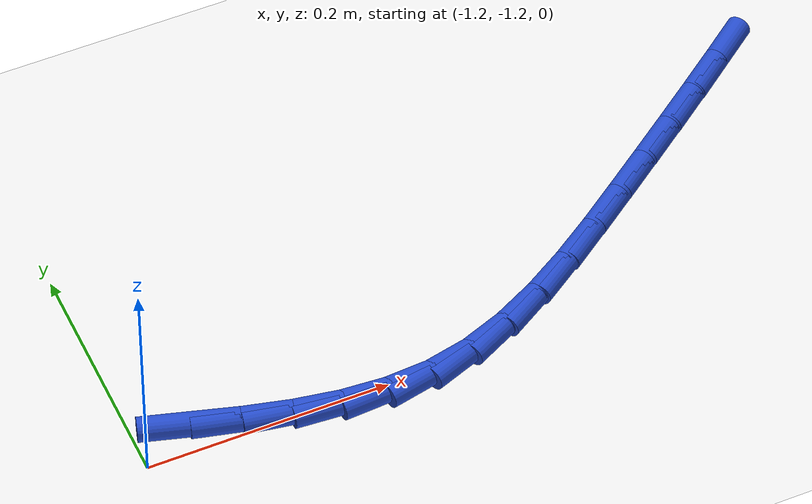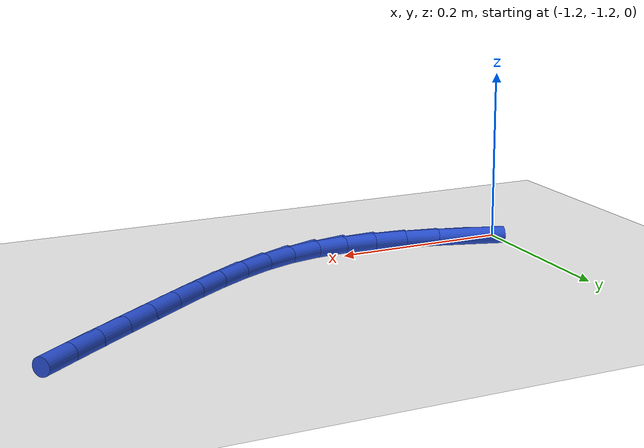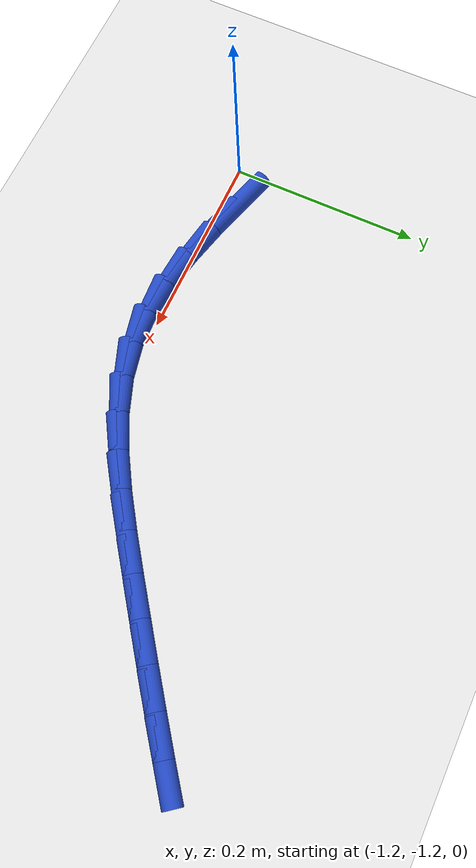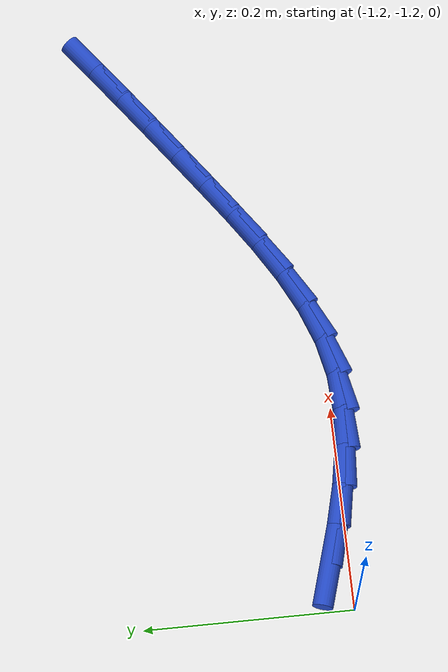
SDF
<sdf version="1.6">
 <world name="default">
  <model name="ground_plane">
   <static>1</static>
   <link name="link">
    <collision name="collision">
     <geometry><plane><normal>0 0 1</normal><size>100 100</size></plane></geometry>
     <surface><friction><ode><mu>100</mu><mu2>50</mu2></ode></friction></surface>
    </collision>
    <visual name="visual">
     <cast_shadows>0</cast_shadows>
     <geometry><plane><normal>0 0 1</normal><size>100 100</size></plane></geometry>
     <material>
      <script><uri>file://media/materials/scripts/gazebo.material</uri><name>Gazebo/WhiteGlow</name></script>
     </material>
    </visual>
   </link>
  </model>
  <model name="line">
   <link name="link_134">
    <pose>-1.1580067389421413 -1.1810202871348194 0.01 0 1.57 -0.2887144396331915</pose>
    <collision name="collision">
     <geometry><cylinder><radius>0.01</radius><length>0.08</length></cylinder></geometry>
    </collision>
    <visual name="visual">
     <material>
      <script><name>Gazebo/Blue</name><uri>file://media/materials/scripts/gazebo.material</uri></script>
     </material>
     <geometry><cylinder><radius>0.01</radius><length>0.08</length></cylinder></geometry>
    </visual>
   </link>
   <link name="link_135">
    <pose>-1.1190459250001203 -1.1925921663891108 0.01 0 1.57 -0.24387757959883888</pose>
    <collision name="collision">
     <geometry><cylinder><radius>0.01</radius><length>0.08</length></cylinder></geometry>
    </collision>
    <visual name="visual">
     <material>
      <script><name>Gazebo/Blue</name><uri>file://media/materials/scripts/gazebo.material</uri></script>
     </material>
     <geometry><cylinder><radius>0.01</radius><length>0.08</length></cylinder></geometry>
    </visual>
   </link>
   <link name="link_136">
    <pose>-1.0805947970140026 -1.2021599767242166 0.01 0 1.57 -0.1729770002072563</pose>
    <collision name="collision">
     <geometry><cylinder><radius>0.01</radius><length>0.08</length></cylinder></geometry>
    </collision>
    <visual name="visual">
     <material>
      <script><name>Gazebo/Blue</name><uri>file://media/materials/scripts/gazebo.material</uri></script>
     </material>
     <geometry><cylinder><radius>0.01</radius><length>0.08</length></cylinder></geometry>
    </visual>
   </link>
   <link name="link_137">
    <pose>-1.042662233130909 -1.208787672592321 0.01 0 1.57 -0.07342815125462407</pose>
    <collision name="collision">
     <geometry><cylinder><radius>0.01</radius><length>0.08</length></cylinder></geometry>
    </collision>
    <visual name="visual">
     <material>
      <script><name>Gazebo/Blue</name><uri>file://media/materials/scripts/gazebo.material</uri></script>
     </material>
     <geometry><cylinder><radius>0.01</radius><length>0.08</length></cylinder></geometry>
    </visual>
   </link>
   <link name="link_138">
    <pose>-1.0052571114979614 -1.211539208445607 0.01 0 1.57 0.05583387227103884</pose>
    <collision name="collision">
     <geometry><cylinder><radius>0.01</radius><length>0.08</length></cylinder></geometry>
    </collision>
    <visual name="visual">
     <material>
      <script><name>Gazebo/Blue</name><uri>file://media/materials/scripts/gazebo.material</uri></script>
     </material>
     <geometry><cylinder><radius>0.01</radius><length>0.08</length></cylinder></geometry>
    </visual>
   </link>
   <link name="link_139">
    <pose>-0.9683883102622799 -1.209478538736258 0.01 0 1.57 0.2099279921125532</pose>
    <collision name="collision">
     <geometry><cylinder><radius>0.01</radius><length>0.08</length></cylinder></geometry>
    </collision>
    <visual name="visual">
     <material>
      <script><name>Gazebo/Blue</name><uri>file://media/materials/scripts/gazebo.material</uri></script>
     </material>
     <geometry><cylinder><radius>0.01</radius><length>0.08</length></cylinder></geometry>
    </visual>
   </link>
   <link name="link_140">
    <pose>-0.9320630433524567 -1.2017388170487442 0.01 0 1.57 0.3533651986936958</pose>
    <collision name="collision">
     <geometry><cylinder><radius>0.01</radius><length>0.08</length></cylinder></geometry>
    </collision>
    <visual name="visual">
     <material>
      <script><name>Gazebo/Blue</name><uri>file://media/materials/scripts/gazebo.material</uri></script>
     </material>
     <geometry><cylinder><radius>0.01</radius><length>0.08</length></cylinder></geometry>
    </visual>
   </link>
   <link name="link_141">
    <pose>-0.8962625337798734 -1.1885339137650166 0.01 0 1.57 0.46235397760210983</pose>
    <collision name="collision">
     <geometry><cylinder><radius>0.01</radius><length>0.08</length></cylinder></geometry>
    </collision>
    <visual name="visual">
     <material>
      <script><name>Gazebo/Blue</name><uri>file://media/materials/scripts/gazebo.material</uri></script>
     </material>
     <geometry><cylinder><radius>0.01</radius><length>0.08</length></cylinder></geometry>
    </visual>
   </link>
   <link name="link_142">
    <pose>-0.8609474245304143 -1.1709334281766899 0.01 0 1.57 0.5400242235394976</pose>
    <collision name="collision">
     <geometry><cylinder><radius>0.01</radius><length>0.08</length></cylinder></geometry>
    </collision>
    <visual name="visual">
     <material>
      <script><name>Gazebo/Blue</name><uri>file://media/materials/scripts/gazebo.material</uri></script>
     </material>
     <geometry><cylinder><radius>0.01</radius><length>0.08</length></cylinder></geometry>
    </visual>
   </link>
   <link name="link_143">
    <pose>-0.8260777950677244 -1.150030391143689 0.01 0 1.57 0.5907397959385251</pose>
    <collision name="collision">
     <geometry><cylinder><radius>0.01</radius><length>0.08</length></cylinder></geometry>
    </collision>
    <visual name="visual">
     <material>
      <script><name>Gazebo/Blue</name><uri>file://media/materials/scripts/gazebo.material</uri></script>
     </material>
     <geometry><cylinder><radius>0.01</radius><length>0.08</length></cylinder></geometry>
    </visual>
   </link>
   <link name="link_144">
    <pose>-0.7916137248554469 -1.1269178335259364 0.01 0 1.57 0.6177793924117527</pose>
    <collision name="collision">
     <geometry><cylinder><radius>0.01</radius><length>0.08</length></cylinder></geometry>
    </collision>
    <visual name="visual">
     <material>
      <script><name>Gazebo/Blue</name><uri>file://media/materials/scripts/gazebo.material</uri></script>
     </material>
     <geometry><cylinder><radius>0.01</radius><length>0.08</length></cylinder></geometry>
    </visual>
   </link>
   <link name="link_145">
    <pose>-0.7575152933572257 -1.1026887861833563 0.01 0 1.57 0.6252822630911149</pose>
    <collision name="collision">
     <geometry><cylinder><radius>0.01</radius><length>0.08</length></cylinder></geometry>
    </collision>
    <visual name="visual">
     <material>
      <script><name>Gazebo/Blue</name><uri>file://media/materials/scripts/gazebo.material</uri></script>
     </material>
     <geometry><cylinder><radius>0.01</radius><length>0.08</length></cylinder></geometry>
    </visual>
   </link>
   <link name="link_146">
    <pose>-0.7237495372003689 -1.078312823524311 0.01 0 1.57 0.6286489795895932</pose>
    <collision name="collision">
     <geometry><cylinder><radius>0.01</radius><length>0.08</length></cylinder></geometry>
    </collision>
    <visual name="visual">
     <material>
      <script><name>Gazebo/Blue</name><uri>file://media/materials/scripts/gazebo.material</uri></script>
     </material>
     <geometry><cylinder><radius>0.01</radius><length>0.08</length></cylinder></geometry>
    </visual>
   </link>
   <link name="link_147">
    <pose>-0.690325615663957 -1.0540120439210972 0.01 0 1.57 0.6335635386000249</pose>
    <collision name="collision">
     <geometry><cylinder><radius>0.01</radius><length>0.08</length></cylinder></geometry>
    </collision>
    <visual name="visual">
     <material>
      <script><name>Gazebo/Blue</name><uri>file://media/materials/scripts/gazebo.material</uri></script>
     </material>
     <geometry><cylinder><radius>0.01</radius><length>0.08</length></cylinder></geometry>
    </visual>
   </link>
   <link name="link_148">
    <pose>-0.657268458841842 -1.0297286890509547 0.01 0 1.57 0.6400656069052517</pose>
    <collision name="collision">
     <geometry><cylinder><radius>0.01</radius><length>0.08</length></cylinder></geometry>
    </collision>
    <visual name="visual">
     <material>
      <script><name>Gazebo/Blue</name><uri>file://media/materials/scripts/gazebo.material</uri></script>
     </material>
     <geometry><cylinder><radius>0.01</radius><length>0.08</length></cylinder></geometry>
    </visual>
   </link>
   <link name="link_149">
    <pose>-0.6246030244501314 -1.0054045104279712 0.01 0 1.57 0.6481817746326342</pose>
    <collision name="collision">
     <geometry><cylinder><radius>0.01</radius><length>0.08</length></cylinder></geometry>
    </collision>
    <visual name="visual">
     <material>
      <script><name>Gazebo/Blue</name><uri>file://media/materials/scripts/gazebo.material</uri></script>
     </material>
     <geometry><cylinder><radius>0.01</radius><length>0.08</length></cylinder></geometry>
    </visual>
   </link>
  </model>
 </world>
</sdf>
